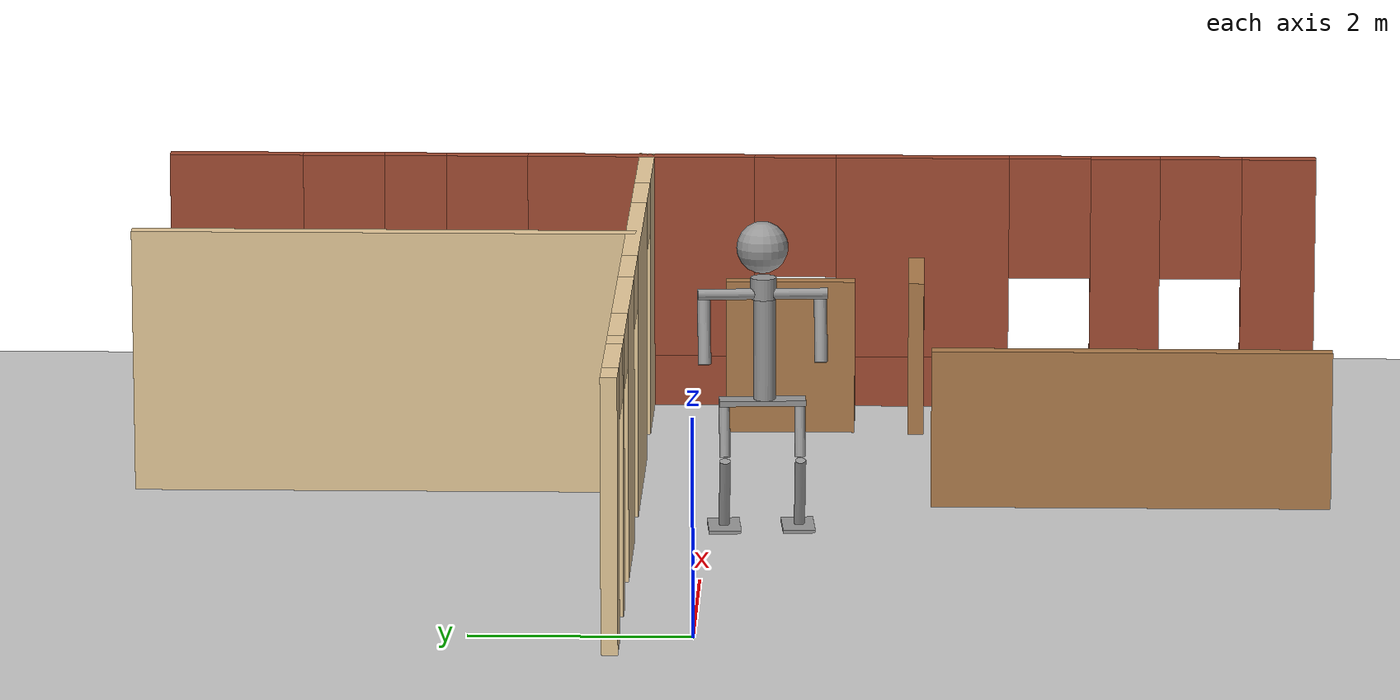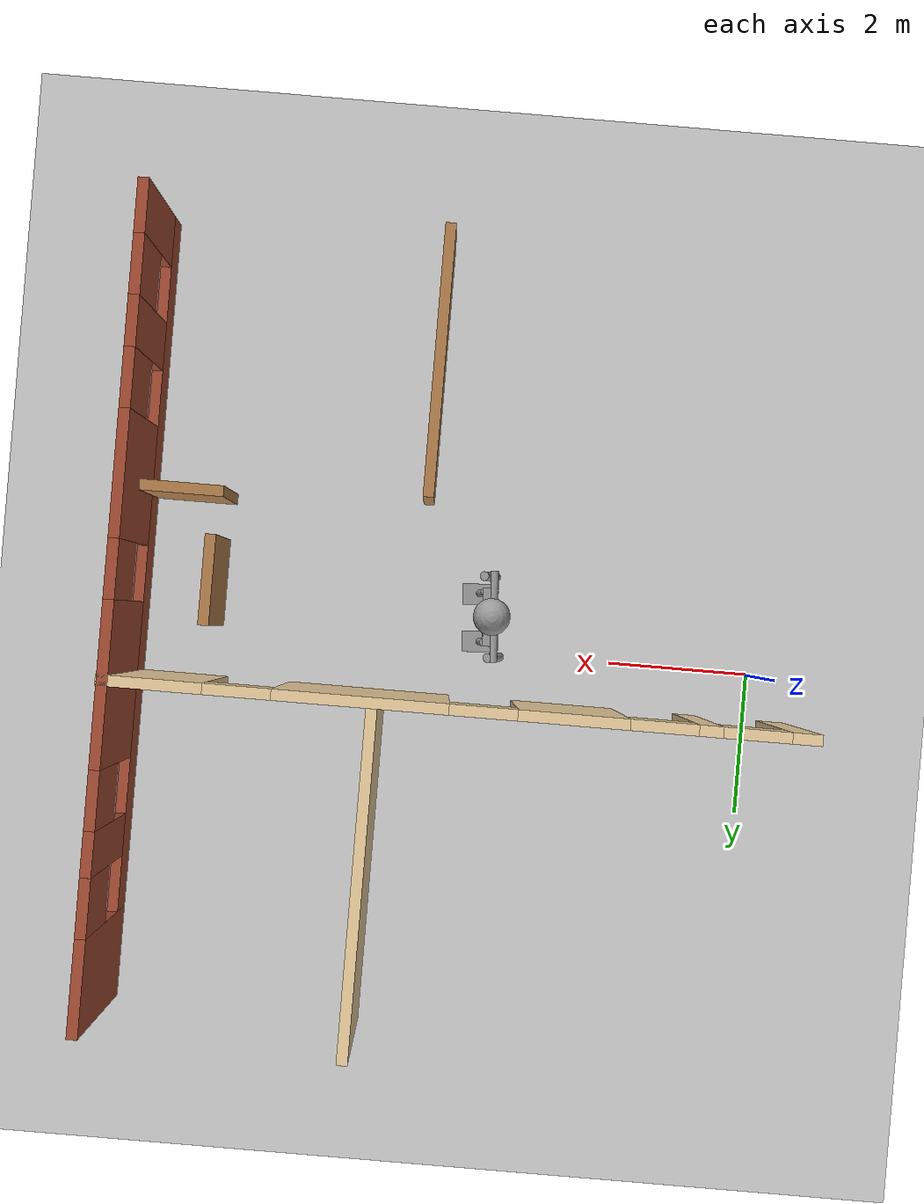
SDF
<sdf version="1.6">
 <world name="default">
  <model name="ground_plane">
   <static>1</static>
   <link name="link">
    <collision name="collision">
     <geometry><plane><normal>0 0 1</normal><size>100 100</size></plane></geometry>
     <surface><friction><ode><mu>100</mu><mu2>50</mu2></ode></friction></surface>
    </collision>
    <visual name="visual">
     <cast_shadows>0</cast_shadows>
     <geometry><plane><normal>0 0 1</normal><size>100 100</size></plane></geometry>
     <material>
      <script><uri>file://media/materials/scripts/gazebo.material</uri><name>Gazebo/Grey</name></script>
     </material>
    </visual>
   </link>
  </model>
  <model name="Building">
   <pose>-0.293126 -0.203944 0 0 -0 0</pose>
   <link name="Wall_2">
    <pose>9.10991 -0.011353 0 0 0 -1.5708</pose>
    <visual name="Wall_2_Visual_0">
     <pose>-4.96991 0 1.25 0 -0 0</pose>
     <geometry><box><size>1.31017 0.15 2.5</size></box></geometry>
     <material>
      <script><uri>file://media/materials/scripts/gazebo.material</uri><name>Gazebo/Bricks</name></script>
      <ambient>0 0.666667 0.498039 1</ambient>
     </material>
     <meta><layer>0</layer></meta>
    </visual>
    <collision name="Wall_2_Collision_0">
     <geometry><box><size>1.31017 0.15 2.5</size></box></geometry>
     <pose>-4.96991 0 1.25 0 -0 0</pose>
    </collision>
    <visual name="Wall_2_Visual_1">
     <pose>0.655087 0 0.25 0 -0 0</pose>
     <geometry><box><size>9.93983 0.15 0.5</size></box></geometry>
     <material>
      <script><uri>file://media/materials/scripts/gazebo.material</uri><name>Gazebo/Bricks</name></script>
      <ambient>0 0.666667 0.498039 1</ambient>
     </material>
     <meta><layer>0</layer></meta>
    </visual>
    <collision name="Wall_2_Collision_1">
     <geometry><box><size>9.93983 0.15 0.5</size></box></geometry>
     <pose>0.655087 0 0.25 0 -0 0</pose>
    </collision>
    <visual name="Wall_2_Visual_2">
     <pose>-3.21085 0 1.5 0 -0 0</pose>
     <geometry><box><size>0.60795 0.15 2</size></box></geometry>
     <material>
      <script><uri>file://media/materials/scripts/gazebo.material</uri><name>Gazebo/Bricks</name></script>
      <ambient>0 0.666667 0.498039 1</ambient>
     </material>
     <meta><layer>0</layer></meta>
    </visual>
    <collision name="Wall_2_Collision_2">
     <geometry><box><size>0.60795 0.15 2</size></box></geometry>
     <pose>-3.21085 0 1.5 0 -0 0</pose>
    </collision>
    <visual name="Wall_2_Visual_3">
     <pose>-0.992199 0 1.5 0 -0 0</pose>
     <geometry><box><size>2.22935 0.15 2</size></box></geometry>
     <material>
      <script><uri>file://media/materials/scripts/gazebo.material</uri><name>Gazebo/Bricks</name></script>
      <ambient>0 0.666667 0.498039 1</ambient>
     </material>
     <meta><layer>0</layer></meta>
    </visual>
    <collision name="Wall_2_Collision_3">
     <geometry><box><size>2.22935 0.15 2</size></box></geometry>
     <pose>-0.992199 0 1.5 0 -0 0</pose>
    </collision>
    <visual name="Wall_2_Visual_4">
     <pose>1.77153 0 1.5 0 -0 0</pose>
     <geometry><box><size>1.69811 0.15 2</size></box></geometry>
     <material>
      <script><uri>file://media/materials/scripts/gazebo.material</uri><name>Gazebo/Bricks</name></script>
      <ambient>0 0.666667 0.498039 1</ambient>
     </material>
     <meta><layer>0</layer></meta>
    </visual>
    <collision name="Wall_2_Collision_4">
     <geometry><box><size>1.69811 0.15 2</size></box></geometry>
     <pose>1.77153 0 1.5 0 -0 0</pose>
    </collision>
    <visual name="Wall_2_Visual_5">
     <pose>3.76076 0 1.5 0 -0 0</pose>
     <geometry><box><size>0.680358 0.15 2</size></box></geometry>
     <material>
      <script><uri>file://media/materials/scripts/gazebo.material</uri><name>Gazebo/Bricks</name></script>
      <ambient>0 0.666667 0.498039 1</ambient>
     </material>
     <meta><layer>0</layer></meta>
    </visual>
    <collision name="Wall_2_Collision_5">
     <geometry><box><size>0.680358 0.15 2</size></box></geometry>
     <pose>3.76076 0 1.5 0 -0 0</pose>
    </collision>
    <visual name="Wall_2_Visual_6">
     <pose>5.26297 0 1.5 0 -0 0</pose>
     <geometry><box><size>0.724057 0.15 2</size></box></geometry>
     <material>
      <script><uri>file://media/materials/scripts/gazebo.material</uri><name>Gazebo/Bricks</name></script>
      <ambient>0 0.666667 0.498039 1</ambient>
     </material>
     <meta><layer>0</layer></meta>
    </visual>
    <collision name="Wall_2_Collision_6">
     <geometry><box><size>0.724057 0.15 2</size></box></geometry>
     <pose>5.26297 0 1.5 0 -0 0</pose>
    </collision>
    <visual name="Wall_2_Visual_7">
     <pose>-3.91483 0 1.9 0 -0 0</pose>
     <geometry><box><size>0.8 0.15 1.2</size></box></geometry>
     <material>
      <script><uri>file://media/materials/scripts/gazebo.material</uri><name>Gazebo/Bricks</name></script>
      <ambient>0 0.666667 0.498039 1</ambient>
     </material>
     <meta><layer>0</layer></meta>
    </visual>
    <collision name="Wall_2_Collision_7">
     <geometry><box><size>0.8 0.15 1.2</size></box></geometry>
     <pose>-3.91483 0 1.9 0 -0 0</pose>
    </collision>
    <visual name="Wall_2_Visual_8">
     <pose>-2.50688 0 1.9 0 -0 0</pose>
     <geometry><box><size>0.8 0.15 1.2</size></box></geometry>
     <material>
      <script><uri>file://media/materials/scripts/gazebo.material</uri><name>Gazebo/Bricks</name></script>
      <ambient>0 0.666667 0.498039 1</ambient>
     </material>
     <meta><layer>0</layer></meta>
    </visual>
    <collision name="Wall_2_Collision_8">
     <geometry><box><size>0.8 0.15 1.2</size></box></geometry>
     <pose>-2.50688 0 1.9 0 -0 0</pose>
    </collision>
    <visual name="Wall_2_Visual_9">
     <pose>0.522479 0 1.9 0 -0 0</pose>
     <geometry><box><size>0.8 0.15 1.2</size></box></geometry>
     <material>
      <script><uri>file://media/materials/scripts/gazebo.material</uri><name>Gazebo/Bricks</name></script>
      <ambient>0 0.666667 0.498039 1</ambient>
     </material>
     <meta><layer>0</layer></meta>
    </visual>
    <collision name="Wall_2_Collision_9">
     <geometry><box><size>0.8 0.15 1.2</size></box></geometry>
     <pose>0.522479 0 1.9 0 -0 0</pose>
    </collision>
    <visual name="Wall_2_Visual_10">
     <pose>3.02059 0 1.9 0 -0 0</pose>
     <geometry><box><size>0.8 0.15 1.2</size></box></geometry>
     <material>
      <script><uri>file://media/materials/scripts/gazebo.material</uri><name>Gazebo/Bricks</name></script>
      <ambient>0 0.666667 0.498039 1</ambient>
     </material>
     <meta><layer>0</layer></meta>
    </visual>
    <collision name="Wall_2_Collision_10">
     <geometry><box><size>0.8 0.15 1.2</size></box></geometry>
     <pose>3.02059 0 1.9 0 -0 0</pose>
    </collision>
    <visual name="Wall_2_Visual_11">
     <pose>4.50094 0 1.9 0 -0 0</pose>
     <geometry><box><size>0.8 0.15 1.2</size></box></geometry>
     <material>
      <script><uri>file://media/materials/scripts/gazebo.material</uri><name>Gazebo/Bricks</name></script>
      <ambient>0 0.666667 0.498039 1</ambient>
     </material>
     <meta><layer>0</layer></meta>
    </visual>
    <collision name="Wall_2_Collision_11">
     <geometry><box><size>0.8 0.15 1.2</size></box></geometry>
     <pose>4.50094 0 1.9 0 -0 0</pose>
    </collision>
   </link>
   <link name="Wall_21">
    <collision name="Wall_21_Collision">
     <geometry><box><size>3.75 0.15 1.5</size></box></geometry>
     <pose>0 0 0.75 0 -0 0</pose>
    </collision>
    <visual name="Wall_21_Visual">
     <pose>0 0 0.75 0 -0 0</pose>
     <geometry><box><size>3.75 0.15 1.5</size></box></geometry>
     <material>
      <script><uri>file://media/materials/scripts/gazebo.material</uri><name>Gazebo/Wood</name></script>
      <ambient>1 1 1 1</ambient>
     </material>
     <meta><layer>0</layer></meta>
    </visual>
    <pose>5.09526 -3.75796 0 0 -0 1.5708</pose>
   </link>
   <link name="Wall_48">
    <pose>4.44899 0.924331 0 0 -0 0</pose>
    <visual name="Wall_48_Visual_0">
     <pose>-4.55266 0 1.25 0 -0 0</pose>
     <geometry><box><size>0.394676 0.15 2.5</size></box></geometry>
     <material>
      <script><uri>file://media/materials/scripts/gazebo.material</uri><name>Gazebo/Grey</name></script>
      <ambient>0.921569 0.807843 0.615686 1</ambient>
     </material>
     <meta><layer>0</layer></meta>
    </visual>
    <collision name="Wall_48_Collision_0">
     <geometry><box><size>0.394676 0.15 2.5</size></box></geometry>
     <pose>-4.55266 0 1.25 0 -0 0</pose>
    </collision>
    <visual name="Wall_48_Visual_1">
     <pose>-3.29697 0 1.25 0 -0 0</pose>
     <geometry><box><size>0.3167 0.15 2.5</size></box></geometry>
     <material>
      <script><uri>file://media/materials/scripts/gazebo.material</uri><name>Gazebo/Grey</name></script>
      <ambient>0.921569 0.807843 0.615686 1</ambient>
     </material>
     <meta><layer>0</layer></meta>
    </visual>
    <collision name="Wall_48_Collision_1">
     <geometry><box><size>0.3167 0.15 2.5</size></box></geometry>
     <pose>-3.29697 0 1.25 0 -0 0</pose>
    </collision>
    <visual name="Wall_48_Visual_2">
     <pose>-1.50361 0 1.25 0 -0 0</pose>
     <geometry><box><size>1.47003 0.15 2.5</size></box></geometry>
     <material>
      <script><uri>file://media/materials/scripts/gazebo.material</uri><name>Gazebo/Grey</name></script>
      <ambient>0.921569 0.807843 0.615686 1</ambient>
     </material>
     <meta><layer>0</layer></meta>
    </visual>
    <collision name="Wall_48_Collision_2">
     <geometry><box><size>1.47003 0.15 2.5</size></box></geometry>
     <pose>-1.50361 0 1.25 0 -0 0</pose>
    </collision>
    <visual name="Wall_48_Visual_3">
     <pose>1.29486 0 1.25 0 -0 0</pose>
     <geometry><box><size>2.3269 0.15 2.5</size></box></geometry>
     <material>
      <script><uri>file://media/materials/scripts/gazebo.material</uri><name>Gazebo/Grey</name></script>
      <ambient>0.921569 0.807843 0.615686 1</ambient>
     </material>
     <meta><layer>0</layer></meta>
    </visual>
    <collision name="Wall_48_Collision_3">
     <geometry><box><size>2.3269 0.15 2.5</size></box></geometry>
     <pose>1.29486 0 1.25 0 -0 0</pose>
    </collision>
    <visual name="Wall_48_Visual_4">
     <pose>4.05415 0 1.25 0 -0 0</pose>
     <geometry><box><size>1.39169 0.15 2.5</size></box></geometry>
     <material>
      <script><uri>file://media/materials/scripts/gazebo.material</uri><name>Gazebo/Grey</name></script>
      <ambient>0.921569 0.807843 0.615686 1</ambient>
     </material>
     <meta><layer>0</layer></meta>
    </visual>
    <collision name="Wall_48_Collision_4">
     <geometry><box><size>1.39169 0.15 2.5</size></box></geometry>
     <pose>4.05415 0 1.25 0 -0 0</pose>
    </collision>
    <visual name="Wall_48_Visual_5">
     <pose>-3.90532 0 2.25 0 -0 0</pose>
     <geometry><box><size>0.9 0.15 0.5</size></box></geometry>
     <material>
      <script><uri>file://media/materials/scripts/gazebo.material</uri><name>Gazebo/Grey</name></script>
      <ambient>0.921569 0.807843 0.615686 1</ambient>
     </material>
     <meta><layer>0</layer></meta>
    </visual>
    <collision name="Wall_48_Collision_5">
     <geometry><box><size>0.9 0.15 0.5</size></box></geometry>
     <pose>-3.90532 0 2.25 0 -0 0</pose>
    </collision>
    <visual name="Wall_48_Visual_6">
     <pose>-2.68862 0 2.25 0 -0 0</pose>
     <geometry><box><size>0.9 0.15 0.5</size></box></geometry>
     <material>
      <script><uri>file://media/materials/scripts/gazebo.material</uri><name>Gazebo/Grey</name></script>
      <ambient>0.921569 0.807843 0.615686 1</ambient>
     </material>
     <meta><layer>0</layer></meta>
    </visual>
    <collision name="Wall_48_Collision_6">
     <geometry><box><size>0.9 0.15 0.5</size></box></geometry>
     <pose>-2.68862 0 2.25 0 -0 0</pose>
    </collision>
    <visual name="Wall_48_Visual_7">
     <pose>-0.318588 0 2.25 0 -0 0</pose>
     <geometry><box><size>0.9 0.15 0.5</size></box></geometry>
     <material>
      <script><uri>file://media/materials/scripts/gazebo.material</uri><name>Gazebo/Grey</name></script>
      <ambient>0.921569 0.807843 0.615686 1</ambient>
     </material>
     <meta><layer>0</layer></meta>
    </visual>
    <collision name="Wall_48_Collision_7">
     <geometry><box><size>0.9 0.15 0.5</size></box></geometry>
     <pose>-0.318588 0 2.25 0 -0 0</pose>
    </collision>
    <visual name="Wall_48_Visual_8">
     <pose>2.90831 0 2.25 0 -0 0</pose>
     <geometry><box><size>0.9 0.15 0.5</size></box></geometry>
     <material>
      <script><uri>file://media/materials/scripts/gazebo.material</uri><name>Gazebo/Grey</name></script>
      <ambient>0.921569 0.807843 0.615686 1</ambient>
     </material>
     <meta><layer>0</layer></meta>
    </visual>
    <collision name="Wall_48_Collision_8">
     <geometry><box><size>0.9 0.15 0.5</size></box></geometry>
     <pose>2.90831 0 2.25 0 -0 0</pose>
    </collision>
   </link>
   <link name="Wall_50">
    <collision name="Wall_50_Collision">
     <geometry><box><size>4.75 0.15 2.5</size></box></geometry>
     <pose>0 0 1.25 0 -0 0</pose>
    </collision>
    <visual name="Wall_50_Visual">
     <pose>0 0 1.25 0 -0 0</pose>
     <geometry><box><size>4.75 0.15 2.5</size></box></geometry>
     <material>
      <script><uri>file://media/materials/scripts/gazebo.material</uri><name>Gazebo/Grey</name></script>
      <ambient>0.921569 0.807843 0.615686 1</ambient>
     </material>
     <meta><layer>0</layer></meta>
    </visual>
    <pose>5.58515 3.27821 0 0 0 -1.5708</pose>
   </link>
   <link name="Wall_60">
    <collision name="Wall_60_Collision">
     <geometry><box><size>1.25 0.15 1.5</size></box></geometry>
     <pose>0 0 0.75 0 -0 0</pose>
    </collision>
    <visual name="Wall_60_Visual">
     <pose>0 0 0.75 0 -0 0</pose>
     <geometry><box><size>1.25 0.15 1.5</size></box></geometry>
     <material>
      <script><uri>file://media/materials/scripts/gazebo.material</uri><name>Gazebo/Wood</name></script>
      <ambient>1 1 1 1</ambient>
     </material>
     <meta><layer>0</layer></meta>
    </visual>
    <pose>8.50626 -1.72796 0 0 -0 3.14159</pose>
   </link>
   <link name="Wall_62">
    <collision name="Wall_62_Collision">
     <geometry><box><size>1.25 0.15 1.5</size></box></geometry>
     <pose>0 0 0.75 0 -0 0</pose>
    </collision>
    <visual name="Wall_62_Visual">
     <pose>0 0 0.75 0 -0 0</pose>
     <geometry><box><size>1.25 0.15 1.5</size></box></geometry>
     <material>
      <script><uri>file://media/materials/scripts/gazebo.material</uri><name>Gazebo/Wood</name></script>
      <ambient>1 1 1 1</ambient>
     </material>
     <meta><layer>0</layer></meta>
    </visual>
    <pose>8.01026 -0.507962 0 0 0 -1.5708</pose>
   </link>
   <static>1</static>
  </model>
  <model name="HumanoidRobot_3">
   <model name="Untitled">
    <model name="HumanoidRobot">
     <link name="link_1">
      <pose>-0.173443 0.410402 2.12746 0 -0 0</pose>
      <inertial>
       <mass>0.94</mass>
       <inertia><ixx>0.1</ixx><ixy>0</ixy><ixz>0</ixz><iyy>0.1</iyy><iyz>0</iyz><izz>0.1</izz></inertia>
      </inertial>
      <visual name="visual">
       <geometry><sphere><radius>0.24</radius></sphere></geometry>
       <material>
        <lighting>1</lighting>
        <script><uri>file://media/materials/scripts/gazebo.material</uri><name>Gazebo/Grey</name></script>
        <shader type="pixel"><normal_map>__default__</normal_map></shader>
        <ambient>0.3 0.3 0.3 1</ambient>
        <diffuse>0.7 0.7 0.7 1</diffuse>
        <specular>0.01 0.01 0.01 1</specular>
        <emissive>0 0 0 1</emissive>
       </material>
      </visual>
      <collision name="collision">
       <geometry><sphere><radius>0.24</radius></sphere></geometry>
       <surface>
        <friction>
         <ode><mu>1</mu><mu2>1</mu2><fdir1>0 0 0</fdir1><slip1>0</slip1><slip2>0</slip2></ode>
         <torsional>
          <coefficient>1</coefficient>
          <patch_radius>0</patch_radius>
          <surface_radius>0</surface_radius>
          <use_patch_radius>1</use_patch_radius>
          <ode><slip>0</slip></ode>
         </torsional>
        </friction>
        <bounce><restitution_coefficient>0</restitution_coefficient><threshold>1e+06</threshold></bounce>
        <contact>
         <collide_without_contact>0</collide_without_contact>
         <collide_without_contact_bitmask>1</collide_without_contact_bitmask>
         <collide_bitmask>1</collide_bitmask>
         <ode>
          <soft_cfm>0</soft_cfm>
          <soft_erp>0.2</soft_erp>
          <kp>1e+13</kp>
          <kd>1</kd>
          <max_vel>0.01</max_vel>
          <min_depth>0</min_depth>
         </ode>
         <bullet>
          <split_impulse>1</split_impulse>
          <split_impulse_penetration_threshold>-0.01</split_impulse_penetration_threshold>
          <soft_cfm>0</soft_cfm>
          <soft_erp>0.2</soft_erp>
          <kp>1e+13</kp>
          <kd>1</kd>
         </bullet>
        </contact>
       </surface>
      </collision>
     </link>
     <link name="link_2">
      <pose>-0.183443 0.400402 1.74746 0 -0 0</pose>
      <inertial>
       <mass>1</mass>
       <inertia><ixx>0.145833</ixx><ixy>0</ixy><ixz>0</ixz><iyy>0.145833</iyy><iyz>0</iyz><izz>0.125</izz></inertia>
      </inertial>
      <visual name="visual">
       <geometry><cylinder><radius>0.12</radius><length>0.2</length></cylinder></geometry>
       <material>
        <lighting>1</lighting>
        <script><uri>file://media/materials/scripts/gazebo.material</uri><name>Gazebo/Grey</name></script>
        <shader type="pixel"><normal_map>__default__</normal_map></shader>
        <ambient>0.3 0.3 0.3 1</ambient>
        <diffuse>0.7 0.7 0.7 1</diffuse>
        <specular>0.01 0.01 0.01 1</specular>
        <emissive>0 0 0 1</emissive>
       </material>
      </visual>
      <collision name="collision">
       <geometry><cylinder><radius>0.12</radius><length>0.2</length></cylinder></geometry>
       <surface>
        <friction>
         <ode><mu>1</mu><mu2>1</mu2><fdir1>0 0 0</fdir1><slip1>0</slip1><slip2>0</slip2></ode>
         <torsional>
          <coefficient>1</coefficient>
          <patch_radius>0</patch_radius>
          <surface_radius>0</surface_radius>
          <use_patch_radius>1</use_patch_radius>
          <ode><slip>0</slip></ode>
         </torsional>
        </friction>
        <bounce><restitution_coefficient>0</restitution_coefficient><threshold>1e+06</threshold></bounce>
        <contact>
         <collide_without_contact>0</collide_without_contact>
         <collide_without_contact_bitmask>1</collide_without_contact_bitmask>
         <collide_bitmask>1</collide_bitmask>
         <ode>
          <soft_cfm>0</soft_cfm>
          <soft_erp>0.2</soft_erp>
          <kp>1e+13</kp>
          <kd>1</kd>
          <max_vel>0.01</max_vel>
          <min_depth>0</min_depth>
         </ode>
         <bullet>
          <split_impulse>1</split_impulse>
          <split_impulse_penetration_threshold>-0.01</split_impulse_penetration_threshold>
          <soft_cfm>0</soft_cfm>
          <soft_erp>0.2</soft_erp>
          <kp>1e+13</kp>
          <kd>1</kd>
         </bullet>
        </contact>
       </surface>
      </collision>
     </link>
     <link name="link_3">
      <pose>-0.218443 0.410402 1.69752 0 -0 0</pose>
      <inertial>
       <mass>1</mass>
       <inertia><ixx>0.145833</ixx><ixy>0</ixy><ixz>0</ixz><iyy>0.145833</iyy><iyz>0</iyz><izz>0.125</izz></inertia>
      </inertial>
      <visual name="visual">
       <pose>0 0 0 1.5707 -0 0</pose>
       <geometry><cylinder><radius>0.05</radius><length>1.2</length></cylinder></geometry>
       <material>
        <lighting>1</lighting>
        <script><uri>file://media/materials/scripts/gazebo.material</uri><name>Gazebo/Grey</name></script>
        <shader type="pixel"><normal_map>__default__</normal_map></shader>
        <ambient>0.3 0.3 0.3 1</ambient>
        <diffuse>0.7 0.7 0.7 1</diffuse>
        <specular>0.01 0.01 0.01 1</specular>
        <emissive>0 0 0 1</emissive>
       </material>
      </visual>
      <collision name="collision">
       <pose>0 0 0 1.5707 -0 0</pose>
       <geometry><cylinder><radius>0.05</radius><length>1.2</length></cylinder></geometry>
       <surface>
        <friction>
         <ode><mu>1</mu><mu2>1</mu2><fdir1>0 0 0</fdir1><slip1>0</slip1><slip2>0</slip2></ode>
         <torsional>
          <coefficient>1</coefficient>
          <patch_radius>0</patch_radius>
          <surface_radius>0</surface_radius>
          <use_patch_radius>1</use_patch_radius>
          <ode><slip>0</slip></ode>
         </torsional>
        </friction>
        <bounce><restitution_coefficient>0</restitution_coefficient><threshold>1e+06</threshold></bounce>
        <contact>
         <collide_without_contact>0</collide_without_contact>
         <collide_without_contact_bitmask>1</collide_without_contact_bitmask>
         <collide_bitmask>1</collide_bitmask>
         <ode>
          <soft_cfm>0</soft_cfm>
          <soft_erp>0.2</soft_erp>
          <kp>1e+13</kp>
          <kd>1</kd>
          <max_vel>0.01</max_vel>
          <min_depth>0</min_depth>
         </ode>
         <bullet>
          <split_impulse>1</split_impulse>
          <split_impulse_penetration_threshold>-0.01</split_impulse_penetration_threshold>
          <soft_cfm>0</soft_cfm>
          <soft_erp>0.2</soft_erp>
          <kp>1e+13</kp>
          <kd>1</kd>
         </bullet>
        </contact>
       </surface>
      </collision>
     </link>
     <link name="link_4">
      <pose>-0.173443 -0.129603 1.34313 0 -0 0</pose>
      <inertial>
       <mass>1</mass>
       <inertia><ixx>0.145833</ixx><ixy>0</ixy><ixz>0</ixz><iyy>0.145833</iyy><iyz>0</iyz><izz>0.125</izz></inertia>
      </inertial>
      <visual name="visual">
       <pose>0 0 0 0 0.3 0</pose>
       <geometry><cylinder><radius>0.06</radius><length>0.6</length></cylinder></geometry>
       <material>
        <lighting>1</lighting>
        <script><uri>file://media/materials/scripts/gazebo.material</uri><name>Gazebo/Grey</name></script>
        <shader type="pixel"><normal_map>__default__</normal_map></shader>
        <ambient>0.3 0.3 0.3 1</ambient>
        <diffuse>0.7 0.7 0.7 1</diffuse>
        <specular>0.01 0.01 0.01 1</specular>
        <emissive>0 0 0 1</emissive>
       </material>
      </visual>
      <collision name="collision">
       <pose>0 0 0 0 0.3 0</pose>
       <geometry><cylinder><radius>0.06</radius><length>0.6</length></cylinder></geometry>
       <surface>
        <friction>
         <ode><mu>1</mu><mu2>1</mu2><fdir1>0 0 0</fdir1><slip1>0</slip1><slip2>0</slip2></ode>
         <torsional>
          <coefficient>1</coefficient>
          <patch_radius>0</patch_radius>
          <surface_radius>0</surface_radius>
          <use_patch_radius>1</use_patch_radius>
          <ode><slip>0</slip></ode>
         </torsional>
        </friction>
        <bounce><restitution_coefficient>0</restitution_coefficient><threshold>1e+06</threshold></bounce>
        <contact>
         <collide_without_contact>0</collide_without_contact>
         <collide_without_contact_bitmask>1</collide_without_contact_bitmask>
         <collide_bitmask>1</collide_bitmask>
         <ode>
          <soft_cfm>0</soft_cfm>
          <soft_erp>0.2</soft_erp>
          <kp>1e+13</kp>
          <kd>1</kd>
          <max_vel>0.01</max_vel>
          <min_depth>0</min_depth>
         </ode>
         <bullet>
          <split_impulse>1</split_impulse>
          <split_impulse_penetration_threshold>-0.01</split_impulse_penetration_threshold>
          <soft_cfm>0</soft_cfm>
          <soft_erp>0.2</soft_erp>
          <kp>1e+13</kp>
          <kd>1</kd>
         </bullet>
        </contact>
       </surface>
      </collision>
     </link>
     <link name="link_4_clone">
      <pose>-0.224419 0.950407 1.34313 0 -0 0</pose>
      <inertial>
       <mass>1</mass>
       <inertia><ixx>0.145833</ixx><ixy>0</ixy><ixz>0</ixz><iyy>0.145833</iyy><iyz>0</iyz><izz>0.125</izz></inertia>
      </inertial>
      <visual name="visual">
       <pose>0 0 0 0 0.3 0</pose>
       <geometry><cylinder><radius>0.06</radius><length>0.6</length></cylinder></geometry>
       <material>
        <lighting>1</lighting>
        <script><uri>file://media/materials/scripts/gazebo.material</uri><name>Gazebo/Grey</name></script>
        <shader type="pixel"><normal_map>__default__</normal_map></shader>
        <ambient>0.3 0.3 0.3 1</ambient>
        <diffuse>0.7 0.7 0.7 1</diffuse>
        <specular>0.01 0.01 0.01 1</specular>
        <emissive>0 0 0 1</emissive>
       </material>
      </visual>
      <collision name="collision">
       <pose>0 0 0 0 0.3 0</pose>
       <geometry><cylinder><radius>0.06</radius><length>0.6</length></cylinder></geometry>
       <surface>
        <friction>
         <ode><mu>1</mu><mu2>1</mu2><fdir1>0 0 0</fdir1><slip1>0</slip1><slip2>0</slip2></ode>
         <torsional>
          <coefficient>1</coefficient>
          <patch_radius>0</patch_radius>
          <surface_radius>0</surface_radius>
          <use_patch_radius>1</use_patch_radius>
          <ode><slip>0</slip></ode>
         </torsional>
        </friction>
        <bounce><restitution_coefficient>0</restitution_coefficient><threshold>1e+06</threshold></bounce>
        <contact>
         <collide_without_contact>0</collide_without_contact>
         <collide_without_contact_bitmask>1</collide_without_contact_bitmask>
         <collide_bitmask>1</collide_bitmask>
         <ode>
          <soft_cfm>0</soft_cfm>
          <soft_erp>0.2</soft_erp>
          <kp>1e+13</kp>
          <kd>1</kd>
          <max_vel>0.01</max_vel>
          <min_depth>0</min_depth>
         </ode>
         <bullet>
          <split_impulse>1</split_impulse>
          <split_impulse_penetration_threshold>-0.01</split_impulse_penetration_threshold>
          <soft_cfm>0</soft_cfm>
          <soft_erp>0.2</soft_erp>
          <kp>1e+13</kp>
          <kd>1</kd>
         </bullet>
        </contact>
       </surface>
      </collision>
     </link>
     <link name="link_5">
      <pose>-0.193443 0.390402 1.14746 0 -0 0</pose>
      <inertial>
       <mass>1</mass>
       <inertia><ixx>0.145833</ixx><ixy>0</ixy><ixz>0</ixz><iyy>0.145833</iyy><iyz>0</iyz><izz>0.125</izz></inertia>
      </inertial>
      <visual name="visual">
       <geometry><cylinder><radius>0.1</radius><length>1</length></cylinder></geometry>
       <material>
        <lighting>1</lighting>
        <script><uri>file://media/materials/scripts/gazebo.material</uri><name>Gazebo/Grey</name></script>
        <shader type="pixel"><normal_map>__default__</normal_map></shader>
        <ambient>0.3 0.3 0.3 1</ambient>
        <diffuse>0.7 0.7 0.7 1</diffuse>
        <specular>0.01 0.01 0.01 1</specular>
        <emissive>0 0 0 1</emissive>
       </material>
      </visual>
      <collision name="collision">
       <geometry><cylinder><radius>0.1</radius><length>1</length></cylinder></geometry>
       <surface>
        <friction>
         <ode><mu>1</mu><mu2>1</mu2><fdir1>0 0 0</fdir1><slip1>0</slip1><slip2>0</slip2></ode>
         <torsional>
          <coefficient>1</coefficient>
          <patch_radius>0</patch_radius>
          <surface_radius>0</surface_radius>
          <use_patch_radius>1</use_patch_radius>
          <ode><slip>0</slip></ode>
         </torsional>
        </friction>
        <bounce><restitution_coefficient>0</restitution_coefficient><threshold>1e+06</threshold></bounce>
        <contact>
         <collide_without_contact>0</collide_without_contact>
         <collide_without_contact_bitmask>1</collide_without_contact_bitmask>
         <collide_bitmask>1</collide_bitmask>
         <ode>
          <soft_cfm>0</soft_cfm>
          <soft_erp>0.2</soft_erp>
          <kp>1e+13</kp>
          <kd>1</kd>
          <max_vel>0.01</max_vel>
          <min_depth>0</min_depth>
         </ode>
         <bullet>
          <split_impulse>1</split_impulse>
          <split_impulse_penetration_threshold>-0.01</split_impulse_penetration_threshold>
          <soft_cfm>0</soft_cfm>
          <soft_erp>0.2</soft_erp>
          <kp>1e+13</kp>
          <kd>1</kd>
         </bullet>
        </contact>
       </surface>
      </collision>
     </link>
     <link name="link_6">
      <pose>-0.193443 0.410402 0.672459 0 -0 0</pose>
      <inertial>
       <mass>1</mass>
       <inertia>
        <ixx>0.166667</ixx>
        <ixy>0</ixy>
        <ixz>0</ixz>
        <iyy>0.166667</iyy>
        <iyz>0</iyz>
        <izz>0.166667</izz>
       </inertia>
      </inertial>
      <visual name="visual">
       <geometry><box><size>0.2 0.8 0.05</size></box></geometry>
       <material>
        <lighting>1</lighting>
        <script><uri>file://media/materials/scripts/gazebo.material</uri><name>Gazebo/Grey</name></script>
        <shader type="pixel"><normal_map>__default__</normal_map></shader>
        <ambient>0.3 0.3 0.3 1</ambient>
        <diffuse>0.7 0.7 0.7 1</diffuse>
        <specular>0.01 0.01 0.01 1</specular>
        <emissive>0 0 0 1</emissive>
       </material>
      </visual>
      <collision name="collision">
       <geometry><box><size>0.2 0.8 0.05</size></box></geometry>
       <surface>
        <friction>
         <ode><mu>1</mu><mu2>1</mu2><fdir1>0 0 0</fdir1><slip1>0</slip1><slip2>0</slip2></ode>
         <torsional>
          <coefficient>1</coefficient>
          <patch_radius>0</patch_radius>
          <surface_radius>0</surface_radius>
          <use_patch_radius>1</use_patch_radius>
          <ode><slip>0</slip></ode>
         </torsional>
        </friction>
        <bounce><restitution_coefficient>0</restitution_coefficient><threshold>1e+06</threshold></bounce>
        <contact>
         <collide_without_contact>0</collide_without_contact>
         <collide_without_contact_bitmask>1</collide_without_contact_bitmask>
         <collide_bitmask>1</collide_bitmask>
         <ode>
          <soft_cfm>0</soft_cfm>
          <soft_erp>0.2</soft_erp>
          <kp>1e+13</kp>
          <kd>1</kd>
          <max_vel>0.01</max_vel>
          <min_depth>0</min_depth>
         </ode>
         <bullet>
          <split_impulse>1</split_impulse>
          <split_impulse_penetration_threshold>-0.01</split_impulse_penetration_threshold>
          <soft_cfm>0</soft_cfm>
          <soft_erp>0.2</soft_erp>
          <kp>1e+13</kp>
          <kd>1</kd>
         </bullet>
        </contact>
       </surface>
      </collision>
     </link>
     <link name="link_7">
      <pose>-0.18262 0.060402 0.393848 0 -0 0</pose>
      <inertial>
       <mass>1</mass>
       <inertia><ixx>0.145833</ixx><ixy>0</ixy><ixz>0</ixz><iyy>0.145833</iyy><iyz>0</iyz><izz>0.125</izz></inertia>
      </inertial>
      <visual name="visual">
       <pose>0 0 0 0 0.3 0</pose>
       <geometry><cylinder><radius>0.05</radius><length>0.5</length></cylinder></geometry>
       <material>
        <lighting>1</lighting>
        <script><uri>file://media/materials/scripts/gazebo.material</uri><name>Gazebo/Grey</name></script>
        <shader type="pixel"><normal_map>__default__</normal_map></shader>
        <ambient>0.3 0.3 0.3 1</ambient>
        <diffuse>0.7 0.7 0.7 1</diffuse>
        <specular>0.01 0.01 0.01 1</specular>
        <emissive>0 0 0 1</emissive>
       </material>
      </visual>
      <collision name="collision">
       <pose>0 0 0 0 0.3 0</pose>
       <geometry><cylinder><radius>0.05</radius><length>0.5</length></cylinder></geometry>
       <surface>
        <friction>
         <ode><mu>1</mu><mu2>1</mu2><fdir1>0 0 0</fdir1><slip1>0</slip1><slip2>0</slip2></ode>
         <torsional>
          <coefficient>1</coefficient>
          <patch_radius>0</patch_radius>
          <surface_radius>0</surface_radius>
          <use_patch_radius>1</use_patch_radius>
          <ode><slip>0</slip></ode>
         </torsional>
        </friction>
        <bounce><restitution_coefficient>0</restitution_coefficient><threshold>1e+06</threshold></bounce>
        <contact>
         <collide_without_contact>0</collide_without_contact>
         <collide_without_contact_bitmask>1</collide_without_contact_bitmask>
         <collide_bitmask>1</collide_bitmask>
         <ode>
          <soft_cfm>0</soft_cfm>
          <soft_erp>0.2</soft_erp>
          <kp>1e+13</kp>
          <kd>1</kd>
          <max_vel>0.01</max_vel>
          <min_depth>0</min_depth>
         </ode>
         <bullet>
          <split_impulse>1</split_impulse>
          <split_impulse_penetration_threshold>-0.01</split_impulse_penetration_threshold>
          <soft_cfm>0</soft_cfm>
          <soft_erp>0.2</soft_erp>
          <kp>1e+13</kp>
          <kd>1</kd>
         </bullet>
        </contact>
       </surface>
      </collision>
     </link>
     <link name="link_7_clone">
      <pose>-0.173443 0.760402 0.393849 0 -0 0</pose>
      <inertial>
       <mass>1</mass>
       <inertia><ixx>0.145833</ixx><ixy>0</ixy><ixz>0</ixz><iyy>0.145833</iyy><iyz>0</iyz><izz>0.125</izz></inertia>
      </inertial>
      <visual name="visual">
       <pose>0 0 0 0 0.3 0</pose>
       <geometry><cylinder><radius>0.05</radius><length>0.5</length></cylinder></geometry>
       <material>
        <lighting>1</lighting>
        <script><uri>file://media/materials/scripts/gazebo.material</uri><name>Gazebo/Grey</name></script>
        <shader type="pixel"><normal_map>__default__</normal_map></shader>
        <ambient>0.3 0.3 0.3 1</ambient>
        <diffuse>0.7 0.7 0.7 1</diffuse>
        <specular>0.01 0.01 0.01 1</specular>
        <emissive>0 0 0 1</emissive>
       </material>
      </visual>
      <collision name="collision">
       <pose>0 0 0 0 0.3 0</pose>
       <geometry><cylinder><radius>0.05</radius><length>0.5</length></cylinder></geometry>
       <surface>
        <friction>
         <ode><mu>1</mu><mu2>1</mu2><fdir1>0 0 0</fdir1><slip1>0</slip1><slip2>0</slip2></ode>
         <torsional>
          <coefficient>1</coefficient>
          <patch_radius>0</patch_radius>
          <surface_radius>0</surface_radius>
          <use_patch_radius>1</use_patch_radius>
          <ode><slip>0</slip></ode>
         </torsional>
        </friction>
        <bounce><restitution_coefficient>0</restitution_coefficient><threshold>1e+06</threshold></bounce>
        <contact>
         <collide_without_contact>0</collide_without_contact>
         <collide_without_contact_bitmask>1</collide_without_contact_bitmask>
         <collide_bitmask>1</collide_bitmask>
         <ode>
          <soft_cfm>0</soft_cfm>
          <soft_erp>0.2</soft_erp>
          <kp>1e+13</kp>
          <kd>1</kd>
          <max_vel>0.01</max_vel>
          <min_depth>0</min_depth>
         </ode>
         <bullet>
          <split_impulse>1</split_impulse>
          <split_impulse_penetration_threshold>-0.01</split_impulse_penetration_threshold>
          <soft_cfm>0</soft_cfm>
          <soft_erp>0.2</soft_erp>
          <kp>1e+13</kp>
          <kd>1</kd>
         </bullet>
        </contact>
       </surface>
      </collision>
     </link>
     <link name="link_8">
      <pose>-0.173443 0.060402 -0.208906 0 -0 0</pose>
      <inertial>
       <mass>1</mass>
       <inertia><ixx>0.145833</ixx><ixy>0</ixy><ixz>0</ixz><iyy>0.145833</iyy><iyz>0</iyz><izz>0.125</izz></inertia>
      </inertial>
      <visual name="visual">
       <pose>0 0 0 0 -0.3 0</pose>
       <geometry><cylinder><radius>0.05</radius><length>0.7</length></cylinder></geometry>
       <material>
        <lighting>1</lighting>
        <script><uri>file://media/materials/scripts/gazebo.material</uri><name>Gazebo/Grey</name></script>
        <shader type="pixel"><normal_map>__default__</normal_map></shader>
        <ambient>0.3 0.3 0.3 1</ambient>
        <diffuse>0.7 0.7 0.7 1</diffuse>
        <specular>0.01 0.01 0.01 1</specular>
        <emissive>0 0 0 1</emissive>
       </material>
      </visual>
      <collision name="collision">
       <pose>0 0 0 0 -0.3 0</pose>
       <geometry><cylinder><radius>0.05</radius><length>0.7</length></cylinder></geometry>
       <surface>
        <friction>
         <ode><mu>1</mu><mu2>1</mu2><fdir1>0 0 0</fdir1><slip1>0</slip1><slip2>0</slip2></ode>
         <torsional>
          <coefficient>1</coefficient>
          <patch_radius>0</patch_radius>
          <surface_radius>0</surface_radius>
          <use_patch_radius>1</use_patch_radius>
          <ode><slip>0</slip></ode>
         </torsional>
        </friction>
        <bounce><restitution_coefficient>0</restitution_coefficient><threshold>1e+06</threshold></bounce>
        <contact>
         <collide_without_contact>0</collide_without_contact>
         <collide_without_contact_bitmask>1</collide_without_contact_bitmask>
         <collide_bitmask>1</collide_bitmask>
         <ode>
          <soft_cfm>0</soft_cfm>
          <soft_erp>0.2</soft_erp>
          <kp>1e+13</kp>
          <kd>1</kd>
          <max_vel>0.01</max_vel>
          <min_depth>0</min_depth>
         </ode>
         <bullet>
          <split_impulse>1</split_impulse>
          <split_impulse_penetration_threshold>-0.01</split_impulse_penetration_threshold>
          <soft_cfm>0</soft_cfm>
          <soft_erp>0.2</soft_erp>
          <kp>1e+13</kp>
          <kd>1</kd>
         </bullet>
        </contact>
       </surface>
      </collision>
     </link>
     <link name="link_8_clone">
      <pose>-0.173443 0.760402 -0.208905 0 -0 0</pose>
      <inertial>
       <mass>1</mass>
       <inertia><ixx>0.145833</ixx><ixy>0</ixy><ixz>0</ixz><iyy>0.145833</iyy><iyz>0</iyz><izz>0.125</izz></inertia>
      </inertial>
      <visual name="visual">
       <pose>0 0 0 0 -0.3 0</pose>
       <geometry><cylinder><radius>0.05</radius><length>0.7</length></cylinder></geometry>
       <material>
        <lighting>1</lighting>
        <script><uri>file://media/materials/scripts/gazebo.material</uri><name>Gazebo/Grey</name></script>
        <shader type="pixel"><normal_map>__default__</normal_map></shader>
        <ambient>0.3 0.3 0.3 1</ambient>
        <diffuse>0.7 0.7 0.7 1</diffuse>
        <specular>0.01 0.01 0.01 1</specular>
        <emissive>0 0 0 1</emissive>
       </material>
      </visual>
      <collision name="collision">
       <pose>0 0 0 0 -0.3 0</pose>
       <geometry><cylinder><radius>0.05</radius><length>0.7</length></cylinder></geometry>
       <surface>
        <friction>
         <ode><mu>1</mu><mu2>1</mu2><fdir1>0 0 0</fdir1><slip1>0</slip1><slip2>0</slip2></ode>
         <torsional>
          <coefficient>1</coefficient>
          <patch_radius>0</patch_radius>
          <surface_radius>0</surface_radius>
          <use_patch_radius>1</use_patch_radius>
          <ode><slip>0</slip></ode>
         </torsional>
        </friction>
        <bounce><restitution_coefficient>0</restitution_coefficient><threshold>1e+06</threshold></bounce>
        <contact>
         <collide_without_contact>0</collide_without_contact>
         <collide_without_contact_bitmask>1</collide_without_contact_bitmask>
         <collide_bitmask>1</collide_bitmask>
         <ode>
          <soft_cfm>0</soft_cfm>
          <soft_erp>0.2</soft_erp>
          <kp>1e+13</kp>
          <kd>1</kd>
          <max_vel>0.01</max_vel>
          <min_depth>0</min_depth>
         </ode>
         <bullet>
          <split_impulse>1</split_impulse>
          <split_impulse_penetration_threshold>-0.01</split_impulse_penetration_threshold>
          <soft_cfm>0</soft_cfm>
          <soft_erp>0.2</soft_erp>
          <kp>1e+13</kp>
          <kd>1</kd>
         </bullet>
        </contact>
       </surface>
      </collision>
     </link>
     <link name="link_9">
      <pose>-0.073443 0.072902 -0.54305 0 -0 0</pose>
      <inertial>
       <mass>1</mass>
       <inertia>
        <ixx>0.166667</ixx>
        <ixy>0</ixy>
        <ixz>0</ixz>
        <iyy>0.166667</iyy>
        <iyz>0</iyz>
        <izz>0.166667</izz>
       </inertia>
      </inertial>
      <visual name="visual">
       <geometry><box><size>0.5 0.3 0.03</size></box></geometry>
       <material>
        <lighting>1</lighting>
        <script><uri>file://media/materials/scripts/gazebo.material</uri><name>Gazebo/Grey</name></script>
        <shader type="pixel"><normal_map>__default__</normal_map></shader>
        <ambient>0.3 0.3 0.3 1</ambient>
        <diffuse>0.7 0.7 0.7 1</diffuse>
        <specular>0.01 0.01 0.01 1</specular>
        <emissive>0 0 0 1</emissive>
       </material>
      </visual>
      <collision name="collision">
       <geometry><box><size>0.5 0.3 0.03</size></box></geometry>
       <surface>
        <friction>
         <ode><mu>1</mu><mu2>1</mu2><fdir1>0 0 0</fdir1><slip1>0</slip1><slip2>0</slip2></ode>
         <torsional>
          <coefficient>1</coefficient>
          <patch_radius>0</patch_radius>
          <surface_radius>0</surface_radius>
          <use_patch_radius>1</use_patch_radius>
          <ode><slip>0</slip></ode>
         </torsional>
        </friction>
        <bounce><restitution_coefficient>0</restitution_coefficient><threshold>1e+06</threshold></bounce>
        <contact>
         <collide_without_contact>0</collide_without_contact>
         <collide_without_contact_bitmask>1</collide_without_contact_bitmask>
         <collide_bitmask>1</collide_bitmask>
         <ode>
          <soft_cfm>0</soft_cfm>
          <soft_erp>0.2</soft_erp>
          <kp>1e+13</kp>
          <kd>1</kd>
          <max_vel>0.01</max_vel>
          <min_depth>0</min_depth>
         </ode>
         <bullet>
          <split_impulse>1</split_impulse>
          <split_impulse_penetration_threshold>-0.01</split_impulse_penetration_threshold>
          <soft_cfm>0</soft_cfm>
          <soft_erp>0.2</soft_erp>
          <kp>1e+13</kp>
          <kd>1</kd>
         </bullet>
        </contact>
       </surface>
      </collision>
     </link>
     <link name="link_9_clone">
      <pose>-0.073443 0.760402 -0.543049 0 -0 0</pose>
      <inertial>
       <mass>1</mass>
       <inertia>
        <ixx>0.166667</ixx>
        <ixy>0</ixy>
        <ixz>0</ixz>
        <iyy>0.166667</iyy>
        <iyz>0</iyz>
        <izz>0.166667</izz>
       </inertia>
      </inertial>
      <visual name="visual">
       <geometry><box><size>0.5 0.3 0.03</size></box></geometry>
       <material>
        <lighting>1</lighting>
        <script><uri>file://media/materials/scripts/gazebo.material</uri><name>Gazebo/Grey</name></script>
        <shader type="pixel"><normal_map>__default__</normal_map></shader>
        <ambient>0.3 0.3 0.3 1</ambient>
        <diffuse>0.7 0.7 0.7 1</diffuse>
        <specular>0.01 0.01 0.01 1</specular>
        <emissive>0 0 0 1</emissive>
       </material>
      </visual>
      <collision name="collision">
       <geometry><box><size>0.5 0.3 0.03</size></box></geometry>
       <surface>
        <friction>
         <ode><mu>1</mu><mu2>1</mu2><fdir1>0 0 0</fdir1><slip1>0</slip1><slip2>0</slip2></ode>
         <torsional>
          <coefficient>1</coefficient>
          <patch_radius>0</patch_radius>
          <surface_radius>0</surface_radius>
          <use_patch_radius>1</use_patch_radius>
          <ode><slip>0</slip></ode>
         </torsional>
        </friction>
        <bounce><restitution_coefficient>0</restitution_coefficient><threshold>1e+06</threshold></bounce>
        <contact>
         <collide_without_contact>0</collide_without_contact>
         <collide_without_contact_bitmask>1</collide_without_contact_bitmask>
         <collide_bitmask>1</collide_bitmask>
         <ode>
          <soft_cfm>0</soft_cfm>
          <soft_erp>0.2</soft_erp>
          <kp>1e+13</kp>
          <kd>1</kd>
          <max_vel>0.01</max_vel>
          <min_depth>0</min_depth>
         </ode>
         <bullet>
          <split_impulse>1</split_impulse>
          <split_impulse_penetration_threshold>-0.01</split_impulse_penetration_threshold>
          <soft_cfm>0</soft_cfm>
          <soft_erp>0.2</soft_erp>
          <kp>1e+13</kp>
          <kd>1</kd>
         </bullet>
        </contact>
       </surface>
      </collision>
     </link>
     <joint name="link_1_JOINT_0" type="fixed">
      <parent>link_1</parent>
      <child>link_2</child>
      <axis>
       <xyz>1 0 0</xyz>
       <use_parent_model_frame>0</use_parent_model_frame>
       <limit>
        <lower>-1.79769e+308</lower>
        <upper>1.79769e+308</upper>
        <effort>-1</effort>
        <velocity>-1</velocity>
       </limit>
       <dynamics>
        <spring_reference>0</spring_reference>
        <spring_stiffness>0</spring_stiffness>
        <damping>0</damping>
       </dynamics>
      </axis>
      <physics>
       <ode><limit><cfm>0</cfm><erp>0.2</erp></limit><suspension><cfm>0</cfm><erp>0.2</erp></suspension></ode>
      </physics>
     </joint>
     <joint name="link_2_JOINT_1" type="fixed">
      <parent>link_2</parent>
      <child>link_3</child>
      <axis>
       <xyz>1 0 0</xyz>
       <use_parent_model_frame>0</use_parent_model_frame>
       <limit>
        <lower>-1.79769e+308</lower>
        <upper>1.79769e+308</upper>
        <effort>-1</effort>
        <velocity>-1</velocity>
       </limit>
       <dynamics>
        <spring_reference>0</spring_reference>
        <spring_stiffness>0</spring_stiffness>
        <damping>0</damping>
       </dynamics>
      </axis>
      <physics>
       <ode><limit><cfm>0</cfm><erp>0.2</erp></limit><suspension><cfm>0</cfm><erp>0.2</erp></suspension></ode>
      </physics>
     </joint>
     <joint name="link_2_JOINT_4" type="fixed">
      <parent>link_2</parent>
      <child>link_5</child>
      <axis>
       <xyz>0 0 1</xyz>
       <use_parent_model_frame>0</use_parent_model_frame>
       <limit>
        <lower>-1.79769e+308</lower>
        <upper>1.79769e+308</upper>
        <effort>-1</effort>
        <velocity>-1</velocity>
       </limit>
       <dynamics>
        <spring_reference>0</spring_reference>
        <spring_stiffness>0</spring_stiffness>
        <damping>0</damping>
       </dynamics>
      </axis>
      <physics>
       <ode><limit><cfm>0</cfm><erp>0.2</erp></limit><suspension><cfm>0</cfm><erp>0.2</erp></suspension></ode>
      </physics>
     </joint>
     <joint name="link_3_JOINT_2" type="fixed">
      <parent>link_3</parent>
      <child>link_4</child>
      <axis>
       <xyz>1 0 0</xyz>
       <use_parent_model_frame>0</use_parent_model_frame>
       <limit>
        <lower>-1.79769e+308</lower>
        <upper>1.79769e+308</upper>
        <effort>-1</effort>
        <velocity>-1</velocity>
       </limit>
       <dynamics>
        <spring_reference>0</spring_reference>
        <spring_stiffness>0</spring_stiffness>
        <damping>0</damping>
       </dynamics>
      </axis>
      <physics>
       <ode><limit><cfm>0</cfm><erp>0.2</erp></limit><suspension><cfm>0</cfm><erp>0.2</erp></suspension></ode>
      </physics>
     </joint>
     <joint name="link_3_JOINT_3" type="fixed">
      <parent>link_3</parent>
      <child>link_4_clone</child>
      <axis>
       <xyz>1 0 0</xyz>
       <use_parent_model_frame>0</use_parent_model_frame>
       <limit>
        <lower>-1.79769e+308</lower>
        <upper>1.79769e+308</upper>
        <effort>-1</effort>
        <velocity>-1</velocity>
       </limit>
       <dynamics>
        <spring_reference>0</spring_reference>
        <spring_stiffness>0</spring_stiffness>
        <damping>0</damping>
       </dynamics>
      </axis>
      <physics>
       <ode><limit><cfm>0</cfm><erp>0.2</erp></limit><suspension><cfm>0</cfm><erp>0.2</erp></suspension></ode>
      </physics>
     </joint>
     <joint name="link_5_JOINT_5" type="fixed">
      <parent>link_5</parent>
      <child>link_6</child>
      <axis>
       <xyz>0 0 1</xyz>
       <use_parent_model_frame>0</use_parent_model_frame>
       <limit>
        <lower>-1.79769e+308</lower>
        <upper>1.79769e+308</upper>
        <effort>-1</effort>
        <velocity>-1</velocity>
       </limit>
       <dynamics>
        <spring_reference>0</spring_reference>
        <spring_stiffness>0</spring_stiffness>
        <damping>0</damping>
       </dynamics>
      </axis>
      <physics>
       <ode><limit><cfm>0</cfm><erp>0.2</erp></limit><suspension><cfm>0</cfm><erp>0.2</erp></suspension></ode>
      </physics>
     </joint>
     <joint name="link_6_JOINT_6" type="fixed">
      <parent>link_6</parent>
      <child>link_7</child>
      <axis>
       <xyz>0 1 0</xyz>
       <use_parent_model_frame>0</use_parent_model_frame>
       <limit>
        <lower>-1.79769e+308</lower>
        <upper>1.79769e+308</upper>
        <effort>-1</effort>
        <velocity>-1</velocity>
       </limit>
       <dynamics>
        <spring_reference>0</spring_reference>
        <spring_stiffness>0</spring_stiffness>
        <damping>0</damping>
        <friction>0</friction>
       </dynamics>
      </axis>
      <physics>
       <ode><limit><cfm>0</cfm><erp>0.2</erp></limit><suspension><cfm>0</cfm><erp>0.2</erp></suspension></ode>
      </physics>
     </joint>
     <joint name="link_6_JOINT_7" type="fixed">
      <parent>link_6</parent>
      <child>link_7_clone</child>
      <axis>
       <xyz>0 1 0</xyz>
       <use_parent_model_frame>0</use_parent_model_frame>
       <limit>
        <lower>-1.79769e+308</lower>
        <upper>1.79769e+308</upper>
        <effort>-1</effort>
        <velocity>-1</velocity>
       </limit>
       <dynamics>
        <spring_reference>0</spring_reference>
        <spring_stiffness>0</spring_stiffness>
        <damping>0</damping>
       </dynamics>
      </axis>
      <physics>
       <ode><limit><cfm>0</cfm><erp>0.2</erp></limit><suspension><cfm>0</cfm><erp>0.2</erp></suspension></ode>
      </physics>
     </joint>
     <joint name="link_7_JOINT_8" type="fixed">
      <parent>link_7</parent>
      <child>link_8</child>
      <axis>
       <xyz>0 1 0</xyz>
       <use_parent_model_frame>0</use_parent_model_frame>
       <limit>
        <lower>-1.79769e+308</lower>
        <upper>1.79769e+308</upper>
        <effort>-1</effort>
        <velocity>-1</velocity>
       </limit>
       <dynamics>
        <spring_reference>0</spring_reference>
        <spring_stiffness>0</spring_stiffness>
        <damping>0</damping>
       </dynamics>
      </axis>
      <physics>
       <ode><limit><cfm>0</cfm><erp>0.2</erp></limit><suspension><cfm>0</cfm><erp>0.2</erp></suspension></ode>
      </physics>
     </joint>
     <joint name="link_7_clone_JOINT_9" type="fixed">
      <parent>link_7_clone</parent>
      <child>link_8_clone</child>
      <axis>
       <xyz>0 1 0</xyz>
       <use_parent_model_frame>0</use_parent_model_frame>
       <limit>
        <lower>-1.79769e+308</lower>
        <upper>1.79769e+308</upper>
        <effort>-1</effort>
        <velocity>-1</velocity>
       </limit>
       <dynamics>
        <spring_reference>0</spring_reference>
        <spring_stiffness>0</spring_stiffness>
        <damping>0</damping>
       </dynamics>
      </axis>
      <physics>
       <ode><limit><cfm>0</cfm><erp>0.2</erp></limit><suspension><cfm>0</cfm><erp>0.2</erp></suspension></ode>
      </physics>
     </joint>
     <joint name="link_8_JOINT_10" type="fixed">
      <parent>link_8</parent>
      <child>link_9</child>
      <axis>
       <xyz>0 1 0</xyz>
       <use_parent_model_frame>0</use_parent_model_frame>
       <limit>
        <lower>-1.79769e+308</lower>
        <upper>1.79769e+308</upper>
        <effort>-1</effort>
        <velocity>-1</velocity>
       </limit>
       <dynamics>
        <spring_reference>0</spring_reference>
        <spring_stiffness>0</spring_stiffness>
        <damping>0</damping>
       </dynamics>
      </axis>
      <physics>
       <ode><limit><cfm>0</cfm><erp>0.2</erp></limit><suspension><cfm>0</cfm><erp>0.2</erp></suspension></ode>
      </physics>
     </joint>
     <joint name="link_8_clone_JOINT_11" type="fixed">
      <parent>link_8_clone</parent>
      <child>link_9_clone</child>
      <axis>
       <xyz>0 1 0</xyz>
       <use_parent_model_frame>0</use_parent_model_frame>
       <limit>
        <lower>-1.79769e+308</lower>
        <upper>1.79769e+308</upper>
        <effort>-1</effort>
        <velocity>-1</velocity>
       </limit>
       <dynamics>
        <spring_reference>0</spring_reference>
        <spring_stiffness>0</spring_stiffness>
        <damping>0</damping>
       </dynamics>
      </axis>
      <physics>
       <ode><limit><cfm>0</cfm><erp>0.2</erp></limit><suspension><cfm>0</cfm><erp>0.2</erp></suspension></ode>
      </physics>
     </joint>
     <static>0</static>
     <pose>-3e-06 -2e-06 -0 0 -0 0</pose>
    </model>
    <static>1</static>
    <pose>-3e-06 3e-06 0 0 -0 0</pose>
   </model>
   <static>1</static>
   <pose>4.04022 -0.9207 0.55805 -4e-06 -3e-06 0.069086</pose>
  </model>
 </world>
</sdf>
